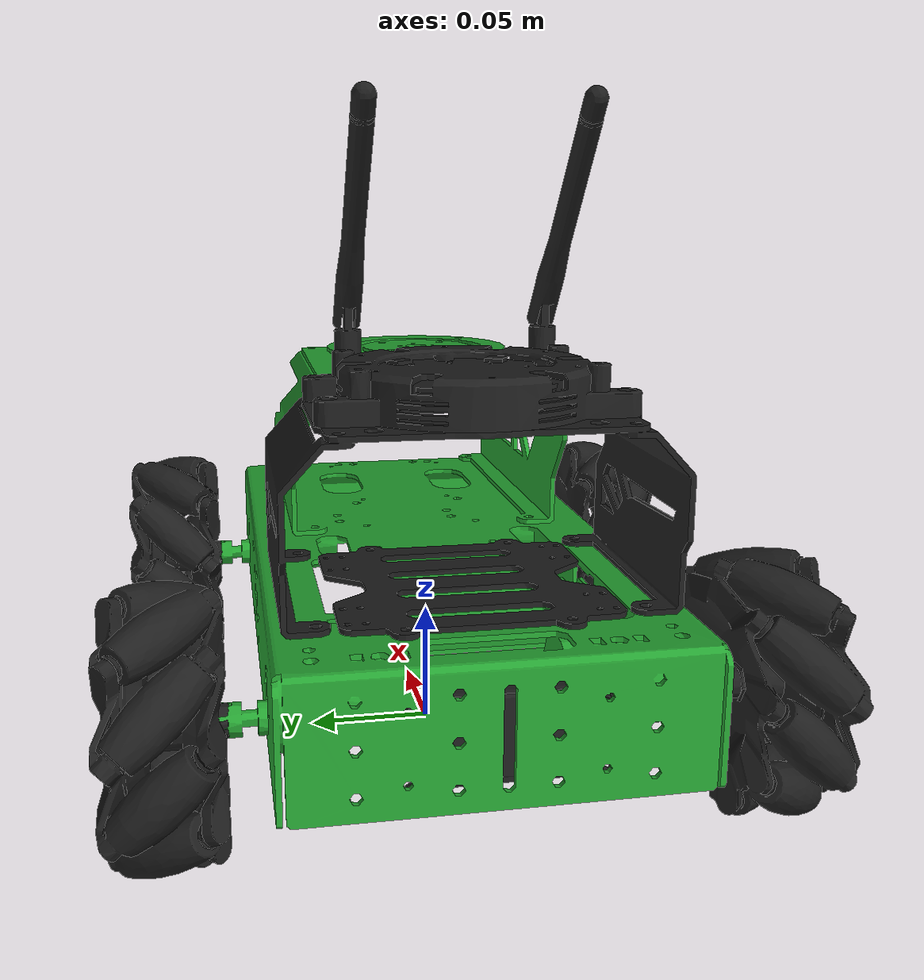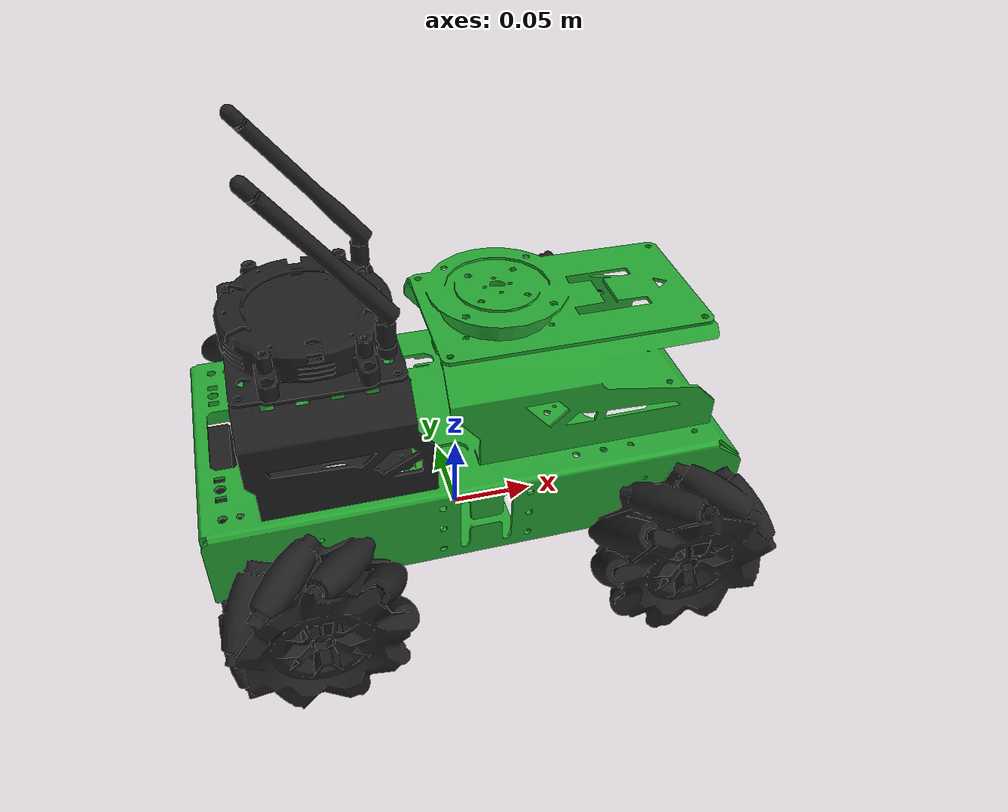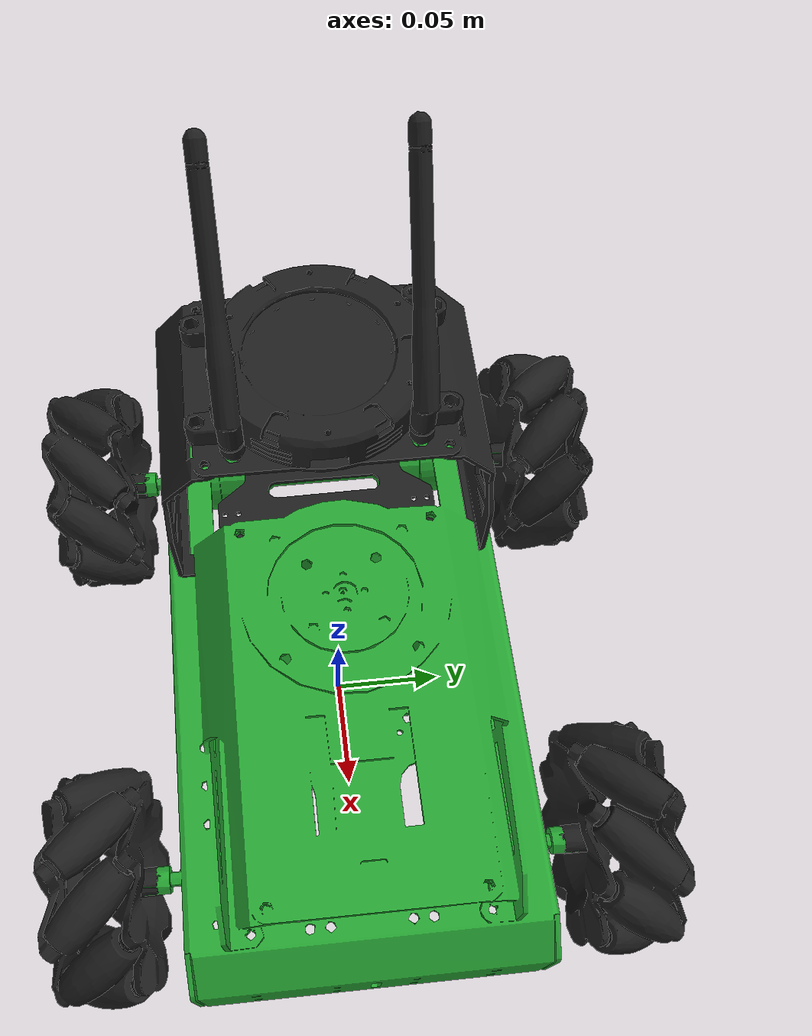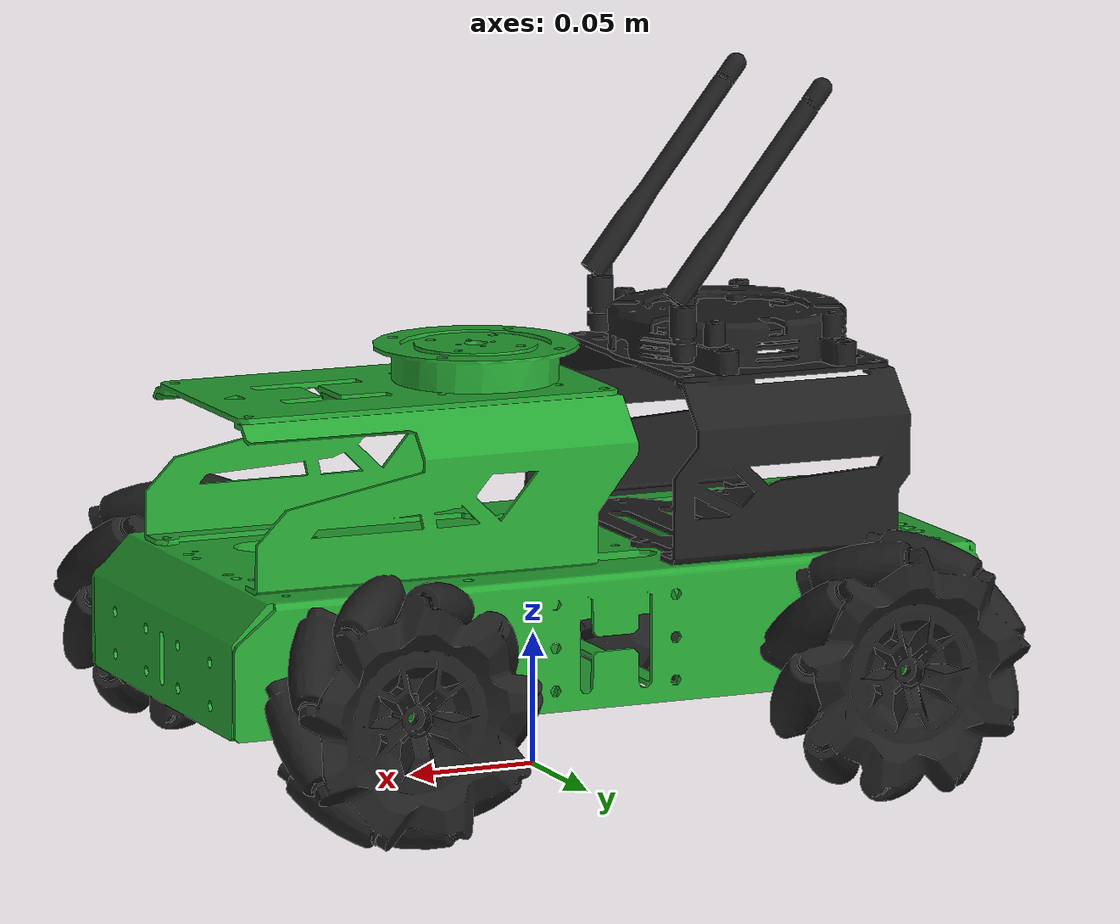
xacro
<?xml version="1.0" encoding="utf-8"?>
<robot name="jetauto" xmlns:xacro="http://ros.org/wiki/xacro" >
  <xacro:property name="M_PI"               value="3.1415926535897931"/>
  <xacro:property name="base_link_mass"     value="1.6" />
  <xacro:property name="base_link_w"        value="0.297"/>
  <xacro:property name="base_link_h"        value="0.145"/>
  <xacro:property name="base_link_d"        value="0.11255"/>

  <xacro:property name="wheel_link_mass"    value="0.1" />
  <xacro:property name="wheel_link_radius"  value="0.049"/>
  <xacro:property name="wheel_link_length"  value="0.04167"/>

  <link name="base_footprint"/>

  <joint name="base_joint" type="fixed">
    <parent link="base_footprint"/>
    <child link="base_link"/>
    <origin xyz="0.0 0.0 0.005" rpy="0 0 0"/>
  </joint>

  <link
    name="base_link">
    <xacro:box_inertial m="${base_link_mass}" w="${base_link_w}" h="${base_link_h}" d="${base_link_d}"/>
    <visual>
      <origin
        xyz="0 0 0"
        rpy="0 0 0" />
      <geometry>
        <mesh
          filename="package://mecabot_gz/meshes/base_link.stl" />
      </geometry>
      <material name="green"/>
    </visual>
    <collision>
      <origin
        xyz="${base_link_w/2.0 - 0.14810} 0 ${0.126437/2 + 0.02362364}"
        rpy="0 0 0" />
      <geometry>
        <box size="${base_link_w} ${base_link_h} ${base_link_d}" />
      </geometry>
    </collision>
  </link>
  <link
    name="back_shell_link">
    <inertial>
      <origin
        xyz="-1.22838595456587E-05 0.00218574826309681 -0.0500522861933898"
        rpy="0 0 0" />
      <mass
        value="0.0663478534899862" />
      <inertia
        ixx="5.65277934912267E-05"
        ixy="-5.13394387877366E-11"
        ixz="-4.07561372273553E-11"
        iyy="4.33740893441632E-05"
        iyz="-5.43059341238134E-06"
        izz="6.86642544694324E-05" />
    </inertial>
    <visual>
      <origin
        xyz="0 0 0"
        rpy="0 0 0" />
      <geometry>
        <mesh
          filename="package://mecabot_gz/meshes/back_shell_link.stl" />
      </geometry>
      <material name="black">
      </material>
    </visual>
        <!--xyz="0 0 0"-->
  </link>
  <joint
    name="back_shell_joint"
    type="fixed">
    <origin
      xyz="-0.076481 0 0.082796"
      rpy="-3.1416 0 1.5708" />
    <parent
      link="base_link" />
    <child
      link="back_shell_link" />
  </joint>
   <link
    name="wheel_right_front_link">
    <xacro:sphere_inertial m="${wheel_link_mass}" r="${wheel_link_radius}" />
    <visual>
      <origin
        xyz="0 0 0"
        rpy="1.5708 1.5708 0" />
      <geometry>
        <mesh
          filename="package://mecabot_gz/meshes/wheel_right_front_link.stl" />
      </geometry>
      <material name="black"/>
    </visual>
    <collision>
      <origin
        xyz="0 0 0"
        rpy="0 0 0" />
      <geometry>
        <sphere radius="${wheel_link_radius}"/>
      </geometry>
    </collision>
  </link>
  <joint
    name="wheel_right_front_joint"
    type="continuous">
    <origin
      xyz="0.097397 -0.086125 0.04508" />
    <parent
      link="base_link" />
    <axis xyz="0 1 0"/>
    <child
      link="wheel_right_front_link" />
    <axis xyz="0 0 -1" />
  </joint>
  <link
    name="wheel_left_front_link">
    <xacro:sphere_inertial m="${wheel_link_mass}" r="${wheel_link_radius}" />
    <visual>
      <origin
        xyz="0 0 0"
        rpy="1.5708 1.5708 0" />
      <geometry>
        <mesh
          filename="package://mecabot_gz/meshes/wheel_left_front_link.stl" />
      </geometry>
      <material name="black"/>
    </visual>
    <collision>
      <origin
        xyz="0 0 0"
        rpy="0 0 0" />
      <geometry>
        <sphere radius="${wheel_link_radius}"/>
      </geometry>
    </collision>
  </link>
  <joint
    name="wheel_left_front_joint"
    type="continuous">
    <origin
      xyz="0.097397 0.086125 0.04508" />
    <parent
      link="base_link" />
    <axis xyz="0 1 0"/>
    <child
      link="wheel_left_front_link" />
    <axis xyz="0 0 -1" />
  </joint>
  <link
    name="wheel_right_back_link">
    <xacro:sphere_inertial m="${wheel_link_mass}" r="${wheel_link_radius}" />
    <visual>
      <origin
        xyz="0 0 0"
        rpy="1.5708 1.5708 0" />
      <geometry>
        <mesh
          filename="package://mecabot_gz/meshes/wheel_right_back_link.stl" />
      </geometry>
      <material name="black"/>
    </visual>
    <collision>
      <origin
        xyz="0 0 0"
        rpy="0 0 0" />
      <geometry>
        <sphere radius="${wheel_link_radius}"/>
      </geometry>
    </collision>
  </link>
  <joint
    name="wheel_right_back_joint"
    type="continuous">
    <origin
      xyz="-0.097397 -0.086125 0.04508" />
    <parent
      link="base_link" />
    <axis xyz="0 1 0"/>
    <child
      link="wheel_right_back_link" />
    <axis xyz="0 0 -1" />
  </joint>
  <link
    name="wheel_left_back_link">
    <xacro:sphere_inertial m="${wheel_link_mass}" r="${wheel_link_radius}" />
    <visual>
      <origin
        xyz="0 0 0"
        rpy="1.5708 1.5708 0" />
      <geometry>
        <mesh
          filename="package://mecabot_gz/meshes/wheel_left_back_link.stl" />
      </geometry>
      <material name="black"/>
    </visual>
    <collision>
      <origin
        xyz="0 0 0"
        rpy="0 0 0" />
      <geometry>
        <sphere radius="${wheel_link_radius}"/>
      </geometry>
    </collision>
  </link>
  <joint
    name="wheel_left_back_joint"
    type="continuous">
    <origin
      xyz="-0.097397 0.086125 0.04508" />
    <parent
      link="base_link" />
    <axis xyz="0 1 0"/>
    <child
      link="wheel_left_back_link" />
    <axis xyz="0 0 -1" />
  </joint>
  <link
    name="mic_link">
    <inertial>
      <origin
        xyz="7.37972827624667E-07 0.000380767498086923 -0.0010743560446495"
        rpy="0 0 0" />
      <mass
        value="0.0234232570822793" />
      <inertia
        ixx="1.59705800233789E-05"
        ixy="-5.64325349754072E-11"
        ixz="8.96027229707658E-11"
        iyy="2.23652963143563E-05"
        iyz="6.01204669252721E-08"
        izz="3.74624298483869E-05" />
    </inertial>
    <visual>
      <origin
        xyz="0 0 0"
        rpy="0 0 0" />
      <geometry>
        <mesh
          filename="package://mecabot_gz/meshes/mic_link.stl" />
      </geometry>
      <material name="black"/>
    </visual>
        <!--xyz="0 0 0"-->
  </link>
  <joint
    name="mic_joint"
    type="fixed">
    <origin
      xyz="-0.079228 -1.5532E-05 0.15861"
      rpy="0 0 1.5708" />
    <parent
      link="base_link" />
    <child
      link="mic_link" />
  </joint>
  <link
    name="speaker_link">
    <inertial>
      <origin
        xyz="0 0 0"
        rpy="0 0 0" />
      <mass
        value="0" />
      <inertia
        ixx="0"
        ixy="0"
        ixz="0"
        iyy="0"
        iyz="0"
        izz="0" />
    </inertial>
    <visual>
      <origin
        xyz="0 0 0"
        rpy="0 0 0" />
      <geometry>
        <mesh
          filename="package://mecabot_gz/meshes/speaker_link.stl" />
      </geometry>
      <material name="black"/>
    </visual>
        <!--xyz="0 0 0"-->
  </link>
  <joint
    name="speaker_joint"
    type="fixed">
    <origin
      xyz="-0.130292759618243 0 0.0549589364206024"
      rpy="0 0 0" />
    <parent
      link="base_link" />
    <child
      link="speaker_link" />
  </joint>
</robot>
